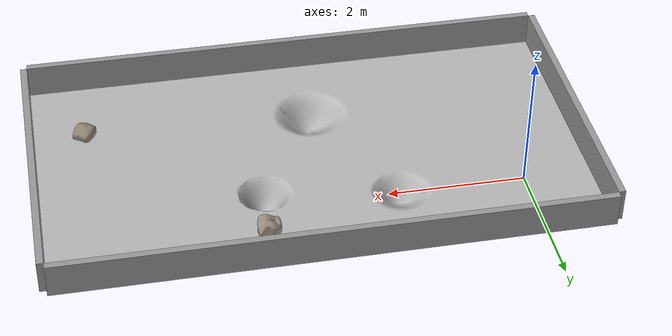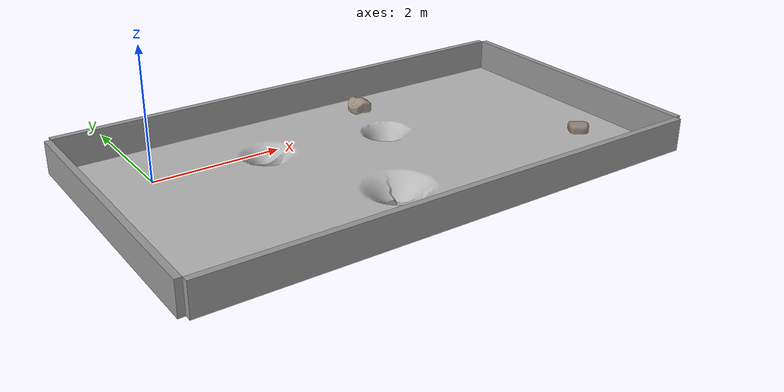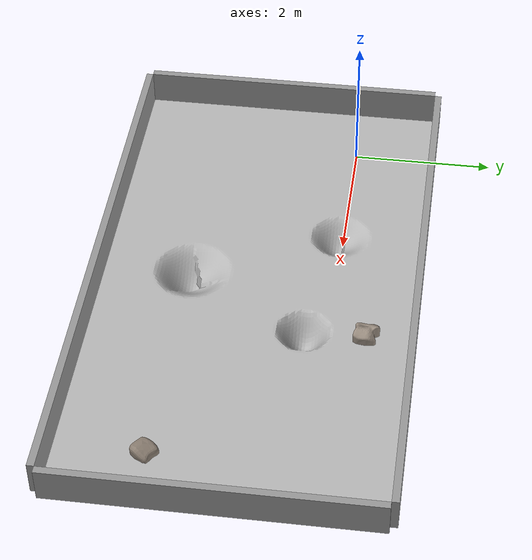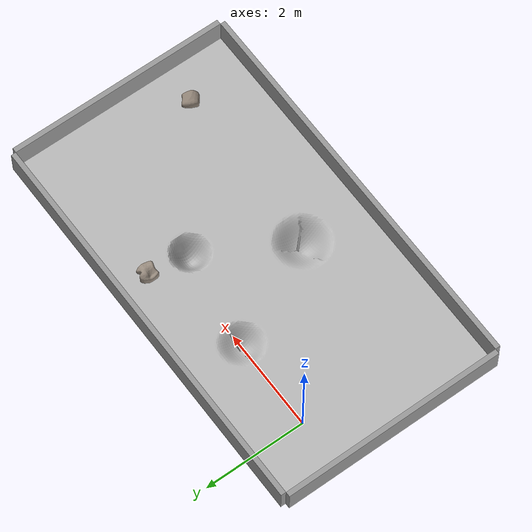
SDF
<sdf version="1.8">
 <world name="moon_yard">
  <gravity>0 0 -9.81</gravity>
  <physics name="1ms" type="ode">
   <max_step_size>0.002</max_step_size>
   <real_time_factor>1.0</real_time_factor>
   <real_time_update_rate>500</real_time_update_rate>
  </physics>
  <plugin filename="ignition-gazebo-physics-system" name="ignition::gazebo::systems::Physics"/>
  <plugin filename="ignition-gazebo-sensors-system" name="ignition::gazebo::systems::Sensors">
   <render_engine>ogre2</render_engine>
  </plugin>
  <plugin filename="ignition-gazebo-scene-broadcaster-system" name="ignition::gazebo::systems::SceneBroadcaster"/>
  <plugin filename="ignition-gazebo-user-commands-system" name="ignition::gazebo::systems::UserCommands"/>
  <plugin filename="ignition-gazebo-imu-system" name="ignition::gazebo::systems::Imu"/>
  <include><uri>https://fuel.gazebosim.org/1.0/OpenRobotics/models/Sun</uri></include>
  <include>
   <uri>model://crater_terrain</uri>
   <name>crater_terrain</name>
   <pose>2.95 -1.1 0.0 0 0 0</pose>
  </include>
  <model name="wall_north">
   <static>true</static>
   <pose>2.95 1.15 0.25 0 0 0</pose>
   <link name="link">
    <collision name="collision"><geometry><box><size>7.9 0.1 0.5</size></box></geometry></collision>
    <visual name="visual">
     <geometry><box><size>7.9 0.1 0.5</size></box></geometry>
     <material><ambient>0.4 0.4 0.4 1</ambient><diffuse>0.6 0.6 0.6 1</diffuse></material>
    </visual>
   </link>
  </model>
  <model name="wall_south">
   <static>true</static>
   <pose>2.95 -3.35 0.25 0 0 0</pose>
   <link name="link">
    <collision name="collision"><geometry><box><size>7.9 0.1 0.5</size></box></geometry></collision>
    <visual name="visual">
     <geometry><box><size>7.9 0.1 0.5</size></box></geometry>
     <material><ambient>0.4 0.4 0.4 1</ambient><diffuse>0.6 0.6 0.6 1</diffuse></material>
    </visual>
   </link>
  </model>
  <model name="wall_east">
   <static>true</static>
   <pose>6.95 -1.1 0.25 0 0 0</pose>
   <link name="link">
    <collision name="collision"><geometry><box><size>0.1 4.4 0.5</size></box></geometry></collision>
    <visual name="visual">
     <geometry><box><size>0.1 4.4 0.5</size></box></geometry>
     <material><ambient>0.4 0.4 0.4 1</ambient><diffuse>0.6 0.6 0.6 1</diffuse></material>
    </visual>
   </link>
  </model>
  <model name="wall_west">
   <static>true</static>
   <pose>-1.05 -1.1 0.25 0 0 0</pose>
   <link name="link">
    <collision name="collision"><geometry><box><size>0.1 4.4 0.5</size></box></geometry></collision>
    <visual name="visual">
     <geometry><box><size>0.1 4.4 0.5</size></box></geometry>
     <material><ambient>0.4 0.4 0.4 1</ambient><diffuse>0.6 0.6 0.6 1</diffuse></material>
    </visual>
   </link>
  </model>
  <include><uri>model://rock_large</uri><name>rock_4</name><pose>3.8 0.5 0.05 0 0 0.8</pose></include>
  <include><uri>model://rock_small</uri><name>rock_6</name><pose>6.15 -2.1 0.05 0 0 0.3</pose></include>
 </world>
</sdf>

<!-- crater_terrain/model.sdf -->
<sdf version="1.8">
  <model name="crater_terrain">
    <static>true</static>
    <link name="surface_link">
      <visual name="visual">
        <pose>0 0 0 0 0 0</pose>
        <geometry>
          <mesh>
            <uri>model://crater_terrain/meshes/crater_terrain.obj</uri>
            <scale>1 1 1</scale>
          </mesh>
        </geometry>
      </visual>
      <collision name="collision">
        <pose>0 0 0 0 0 0</pose>
        <geometry>
          <mesh>
            <uri>model://crater_terrain/meshes/crater_terrain.obj</uri>
            <scale>1 1 1</scale>
          </mesh>
        </geometry>
        <surface>
          <friction>
            <ode>
              <mu>0.8</mu>
              <mu2>0.8</mu2>
            </ode>
          </friction>
        </surface>
      </collision>
    </link>
  </model>
</sdf>

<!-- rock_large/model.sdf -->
<sdf version="1.8">
  <model name="rock_large">
    <static>true</static>
    <link name="rock_link">
      <visual name="visual">
        <geometry>
          <mesh>
            <uri>model://rock_large/meshes/rock_large.stl</uri>
          </mesh>
        </geometry>
        <material>
          <ambient>0.5 0.45 0.4 1</ambient>
          <diffuse>0.6 0.55 0.5 1</diffuse>
          <specular>0.2 0.2 0.2 1</specular>
        </material>
      </visual>
      <collision name="collision">
        <geometry>
          <mesh>
            <uri>model://rock_large/meshes/rock_large.stl</uri>
          </mesh>
        </geometry>
        <surface>
          <friction>
            <ode>
              <mu>0.8</mu>
              <mu2>0.8</mu2>
            </ode>
          </friction>
        </surface>
      </collision>
    </link>
  </model>
</sdf>

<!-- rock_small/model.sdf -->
<sdf version="1.8">
  <model name="rock_small">
    <static>true</static>
    <link name="rock_link">
      <visual name="visual">
        <geometry>
          <mesh>
            <uri>model://rock_small/meshes/rock_small.stl</uri>
          </mesh>
        </geometry>
        <material>
          <ambient>0.45 0.4 0.35 1</ambient>
          <diffuse>0.55 0.5 0.45 1</diffuse>
          <specular>0.2 0.2 0.2 1</specular>
        </material>
      </visual>
      <collision name="collision">
        <geometry>
          <mesh>
            <uri>model://rock_small/meshes/rock_small.stl</uri>
          </mesh>
        </geometry>
        <surface>
          <friction>
            <ode>
              <mu>0.8</mu>
              <mu2>0.8</mu2>
            </ode>
          </friction>
        </surface>
      </collision>
    </link>
  </model>
</sdf>
